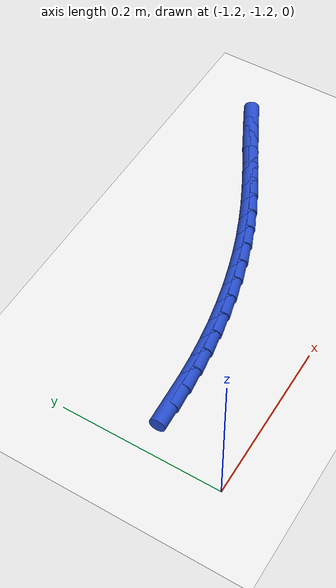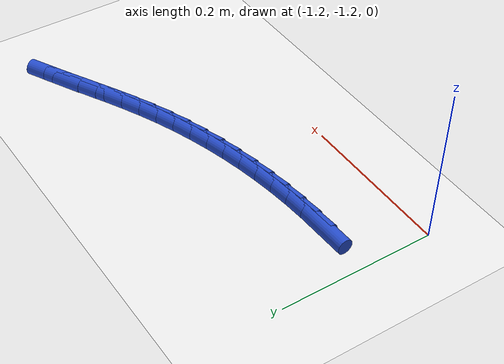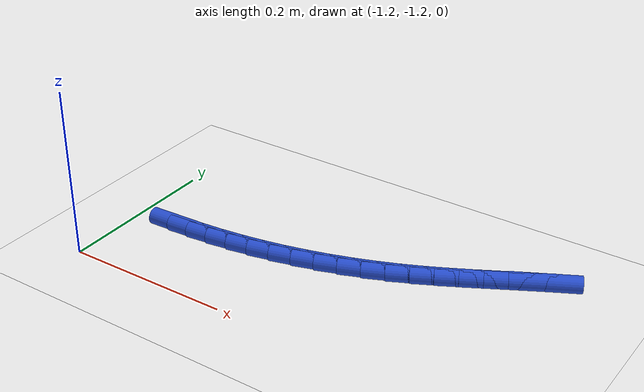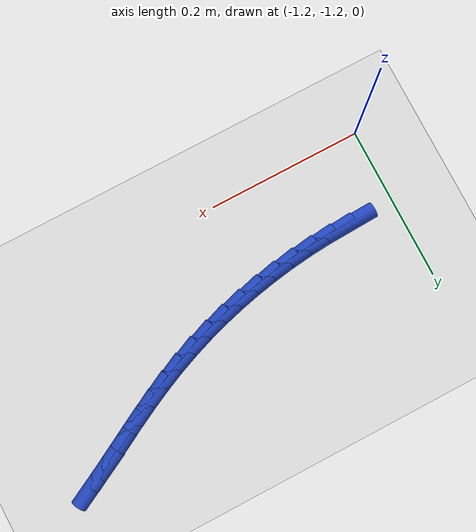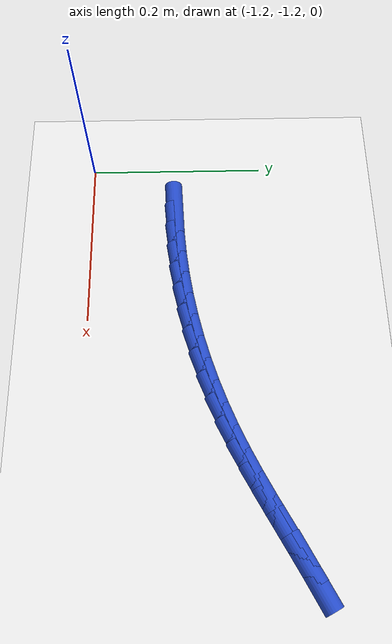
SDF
<sdf version="1.6">
 <world name="default">
  <model name="ground_plane">
   <static>1</static>
   <link name="link">
    <collision name="collision">
     <geometry><plane><normal>0 0 1</normal><size>100 100</size></plane></geometry>
     <surface><friction><ode><mu>100</mu><mu2>50</mu2></ode></friction></surface>
    </collision>
    <visual name="visual">
     <cast_shadows>0</cast_shadows>
     <geometry><plane><normal>0 0 1</normal><size>100 100</size></plane></geometry>
     <material>
      <script><uri>file://media/materials/scripts/gazebo.material</uri><name>Gazebo/WhiteGlow</name></script>
     </material>
    </visual>
   </link>
  </model>
  <model name="line">
   <link name="link_215">
    <pose>-1.1315956638654123 -1.1019795183866028 0.01 0 1.57 0.04232547687822436</pose>
    <collision name="collision">
     <geometry><cylinder><radius>0.01</radius><length>0.08</length></cylinder></geometry>
    </collision>
    <visual name="visual">
     <material>
      <script><name>Gazebo/Blue</name><uri>file://media/materials/scripts/gazebo.material</uri></script>
     </material>
     <geometry><cylinder><radius>0.01</radius><length>0.08</length></cylinder></geometry>
    </visual>
   </link>
   <link name="link_216">
    <pose>-1.1046235473181827 -1.100837228492963 0.01 0 1.57 0.07994112117979146</pose>
    <collision name="collision">
     <geometry><cylinder><radius>0.01</radius><length>0.08</length></cylinder></geometry>
    </collision>
    <visual name="visual">
     <material>
      <script><name>Gazebo/Blue</name><uri>file://media/materials/scripts/gazebo.material</uri></script>
     </material>
     <geometry><cylinder><radius>0.01</radius><length>0.08</length></cylinder></geometry>
    </visual>
   </link>
   <link name="link_217">
    <pose>-1.0777376743003828 -1.0986833515276884 0.01 0 1.57 0.11743542285675569</pose>
    <collision name="collision">
     <geometry><cylinder><radius>0.01</radius><length>0.08</length></cylinder></geometry>
    </collision>
    <visual name="visual">
     <material>
      <script><name>Gazebo/Blue</name><uri>file://media/materials/scripts/gazebo.material</uri></script>
     </material>
     <geometry><cylinder><radius>0.01</radius><length>0.08</length></cylinder></geometry>
    </visual>
   </link>
   <link name="link_218">
    <pose>-1.0509796197071883 -1.0955264825020026 0.01 0 1.57 0.15487880624434894</pose>
    <collision name="collision">
     <geometry><cylinder><radius>0.01</radius><length>0.08</length></cylinder></geometry>
    </collision>
    <visual name="visual">
     <material>
      <script><name>Gazebo/Blue</name><uri>file://media/materials/scripts/gazebo.material</uri></script>
     </material>
     <geometry><cylinder><radius>0.01</radius><length>0.08</length></cylinder></geometry>
    </visual>
   </link>
   <link name="link_219">
    <pose>-1.0243909584337734 -1.0913752164271309 0.01 0 1.57 0.19234287670934183</pose>
    <collision name="collision">
     <geometry><cylinder><radius>0.01</radius><length>0.08</length></cylinder></geometry>
    </collision>
    <visual name="visual">
     <material>
      <script><name>Gazebo/Blue</name><uri>file://media/materials/scripts/gazebo.material</uri></script>
     </material>
     <geometry><cylinder><radius>0.01</radius><length>0.08</length></cylinder></geometry>
    </visual>
   </link>
   <link name="link_220">
    <pose>-0.9980132653753115 -1.0862381483142982 0.01 0 1.57 0.22990001326094217</pose>
    <collision name="collision">
     <geometry><cylinder><radius>0.01</radius><length>0.08</length></cylinder></geometry>
    </collision>
    <visual name="visual">
     <material>
      <script><name>Gazebo/Blue</name><uri>file://media/materials/scripts/gazebo.material</uri></script>
     </material>
     <geometry><cylinder><radius>0.01</radius><length>0.08</length></cylinder></geometry>
    </visual>
   </link>
   <link name="link_221">
    <pose>-0.9718881154269771 -1.0801238731747282 0.01 0 1.57 0.26762296043461486</pose>
    <collision name="collision">
     <geometry><cylinder><radius>0.01</radius><length>0.08</length></cylinder></geometry>
    </collision>
    <visual name="visual">
     <material>
      <script><name>Gazebo/Blue</name><uri>file://media/materials/scripts/gazebo.material</uri></script>
     </material>
     <geometry><cylinder><radius>0.01</radius><length>0.08</length></cylinder></geometry>
    </visual>
   </link>
   <link name="link_222">
    <pose>-0.9460570834839442 -1.0730409860196461 0.01 0 1.57 0.30558440098888867</pose>
    <collision name="collision">
     <geometry><cylinder><radius>0.01</radius><length>0.08</length></cylinder></geometry>
    </collision>
    <visual name="visual">
     <material>
      <script><name>Gazebo/Blue</name><uri>file://media/materials/scripts/gazebo.material</uri></script>
     </material>
     <geometry><cylinder><radius>0.01</radius><length>0.08</length></cylinder></geometry>
    </visual>
   </link>
   <link name="link_223">
    <pose>-0.9205617444413879 -1.0649980818602758 0.01 0 1.57 0.34385649039301397</pose>
    <collision name="collision">
     <geometry><cylinder><radius>0.01</radius><length>0.08</length></cylinder></geometry>
    </collision>
    <visual name="visual">
     <material>
      <script><name>Gazebo/Blue</name><uri>file://media/materials/scripts/gazebo.material</uri></script>
     </material>
     <geometry><cylinder><radius>0.01</radius><length>0.08</length></cylinder></geometry>
    </visual>
   </link>
   <link name="link_224">
    <pose>-0.8954436731944819 -1.0560037557078426 0.01 0 1.57 0.38251033383084343</pose>
    <collision name="collision">
     <geometry><cylinder><radius>0.01</radius><length>0.08</length></cylinder></geometry>
    </collision>
    <visual name="visual">
     <material>
      <script><name>Gazebo/Blue</name><uri>file://media/materials/scripts/gazebo.material</uri></script>
     </material>
     <geometry><cylinder><radius>0.01</radius><length>0.08</length></cylinder></geometry>
    </visual>
   </link>
   <link name="link_225">
    <pose>-0.8707444446384005 -1.0460666025735703 0.01 0 1.57 0.42144969225210493</pose>
    <collision name="collision">
     <geometry><cylinder><radius>0.01</radius><length>0.08</length></cylinder></geometry>
    </collision>
    <visual name="visual">
     <material>
      <script><name>Gazebo/Blue</name><uri>file://media/materials/scripts/gazebo.material</uri></script>
     </material>
     <geometry><cylinder><radius>0.01</radius><length>0.08</length></cylinder></geometry>
    </visual>
   </link>
   <link name="link_226">
    <pose>-0.8465029100237583 -1.035198820216787 0.01 0 1.57 0.45606207382566033</pose>
    <collision name="collision">
     <geometry><cylinder><radius>0.01</radius><length>0.08</length></cylinder></geometry>
    </collision>
    <visual name="visual">
     <material>
      <script><name>Gazebo/Blue</name><uri>file://media/materials/scripts/gazebo.material</uri></script>
     </material>
     <geometry><cylinder><radius>0.01</radius><length>0.08</length></cylinder></geometry>
    </visual>
   </link>
   <link name="link_227">
    <pose>-0.8226818057013167 -1.0235132887014282 0.01 0 1.57 0.48109261458320385</pose>
    <collision name="collision">
     <geometry><cylinder><radius>0.01</radius><length>0.08</length></cylinder></geometry>
    </collision>
    <visual name="visual">
     <material>
      <script><name>Gazebo/Blue</name><uri>file://media/materials/scripts/gazebo.material</uri></script>
     </material>
     <geometry><cylinder><radius>0.01</radius><length>0.08</length></cylinder></geometry>
    </visual>
   </link>
   <link name="link_228">
    <pose>-0.7991594194152382 -1.0112345939512402 0.01 0 1.57 0.4962128506029048</pose>
    <collision name="collision">
     <geometry><cylinder><radius>0.01</radius><length>0.08</length></cylinder></geometry>
    </collision>
    <visual name="visual">
     <material>
      <script><name>Gazebo/Blue</name><uri>file://media/materials/scripts/gazebo.material</uri></script>
     </material>
     <geometry><cylinder><radius>0.01</radius><length>0.08</length></cylinder></geometry>
    </visual>
   </link>
   <link name="link_229">
    <pose>-0.7758096428814646 -0.9985931368125829 0.01 0 1.57 0.5014259946277075</pose>
    <collision name="collision">
     <geometry><cylinder><radius>0.01</radius><length>0.08</length></cylinder></geometry>
    </collision>
    <visual name="visual">
     <material>
      <script><name>Gazebo/Blue</name><uri>file://media/materials/scripts/gazebo.material</uri></script>
     </material>
     <geometry><cylinder><radius>0.01</radius><length>0.08</length></cylinder></geometry>
    </visual>
   </link>
   <link name="link_230">
    <pose>-0.7525063678159384 -0.9858193181318174 0.01 0 1.57 0.4967550524560097</pose>
    <collision name="collision">
     <geometry><cylinder><radius>0.01</radius><length>0.08</length></cylinder></geometry>
    </collision>
    <visual name="visual">
     <material>
      <script><name>Gazebo/Blue</name><uri>file://media/materials/scripts/gazebo.material</uri></script>
     </material>
     <geometry><cylinder><radius>0.01</radius><length>0.08</length></cylinder></geometry>
    </visual>
   </link>
   <link name="link_231">
    <pose>-0.7291234859346016 -0.9731435387553046 0.01 0 1.57 0.48222741352764165</pose>
    <collision name="collision">
     <geometry><cylinder><radius>0.01</radius><length>0.08</length></cylinder></geometry>
    </collision>
    <visual name="visual">
     <material>
      <script><name>Gazebo/Blue</name><uri>file://media/materials/scripts/gazebo.material</uri></script>
     </material>
     <geometry><cylinder><radius>0.01</radius><length>0.08</length></cylinder></geometry>
    </visual>
   </link>
  </model>
 </world>
</sdf>
